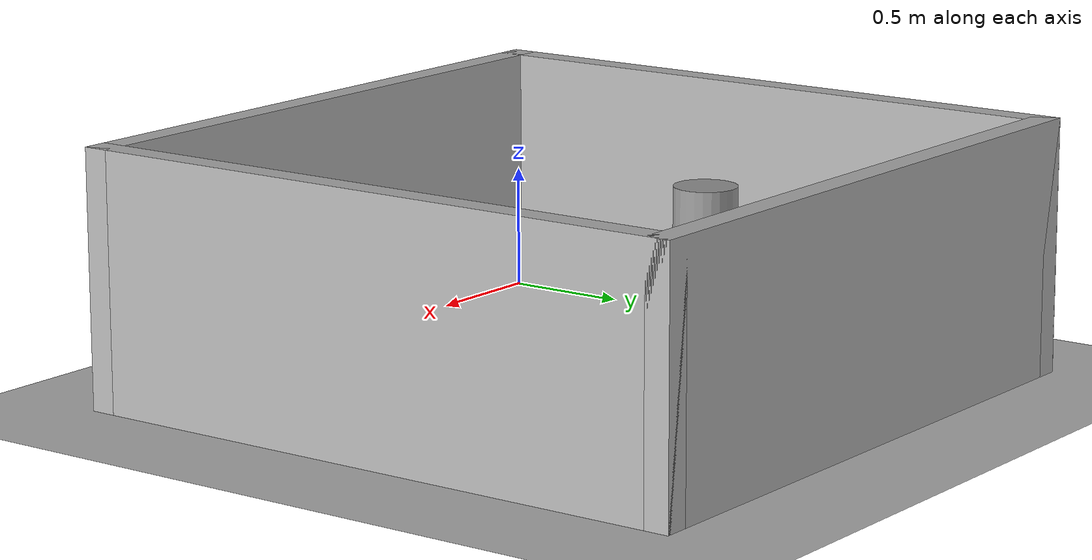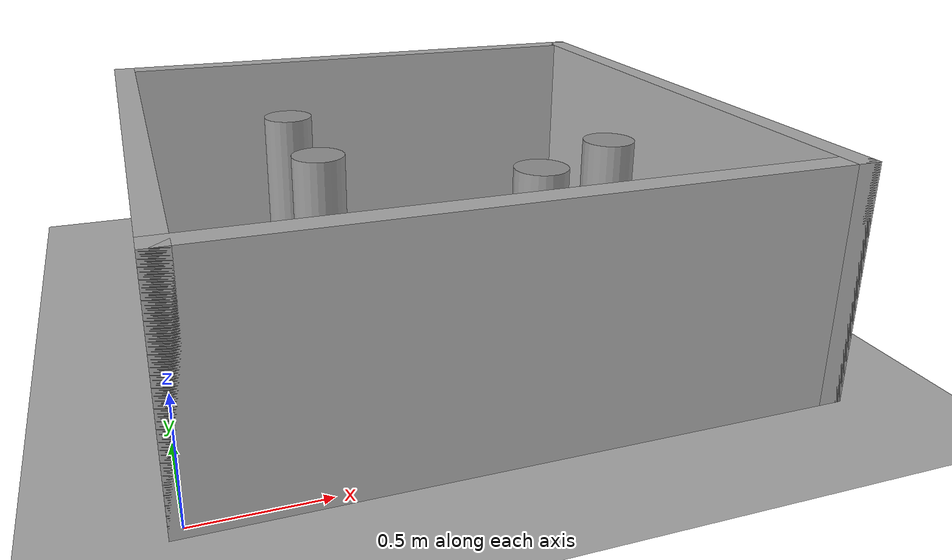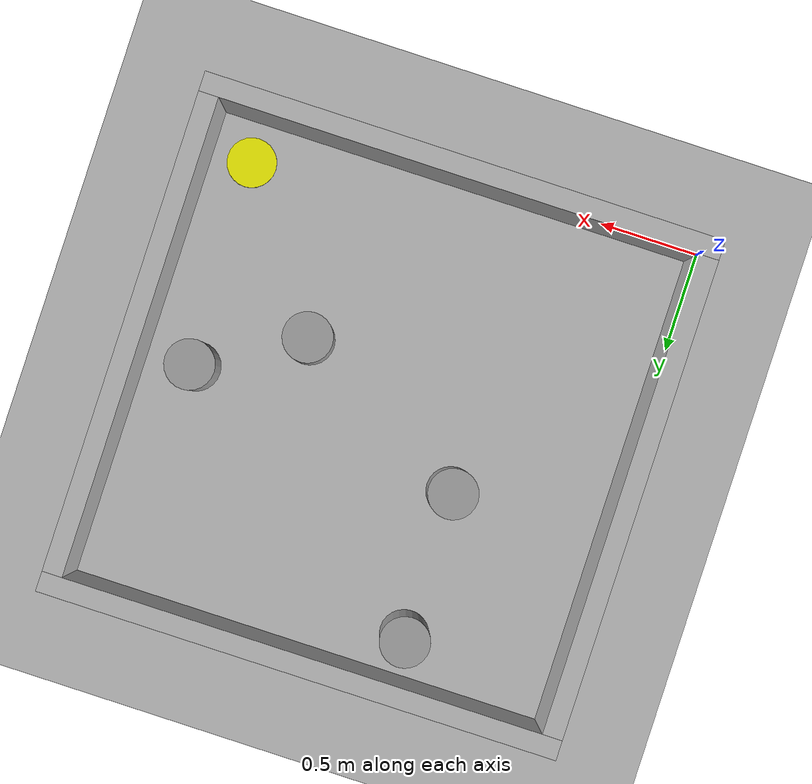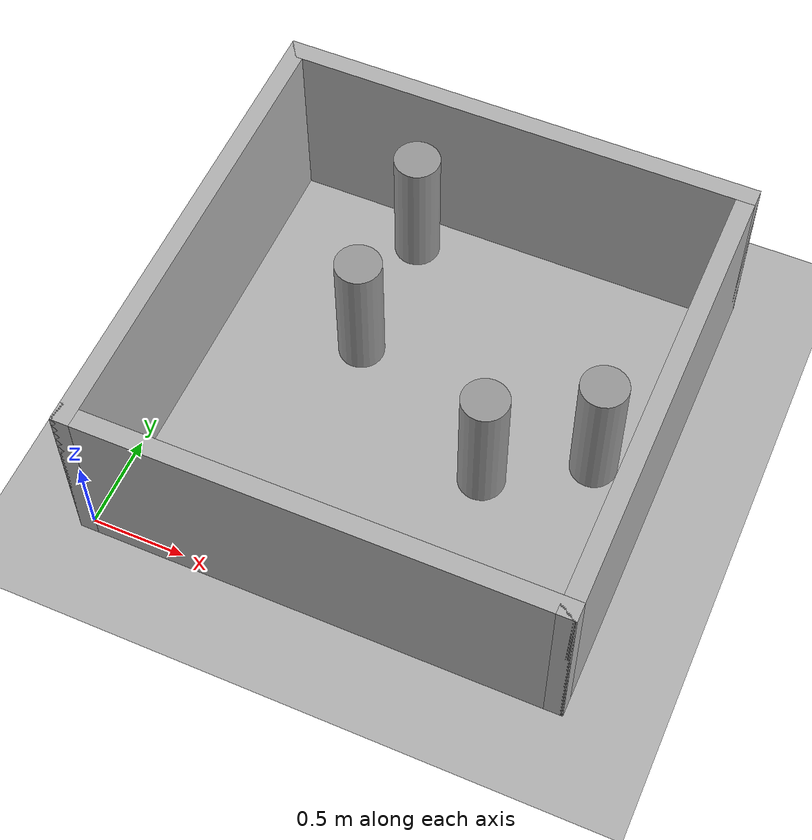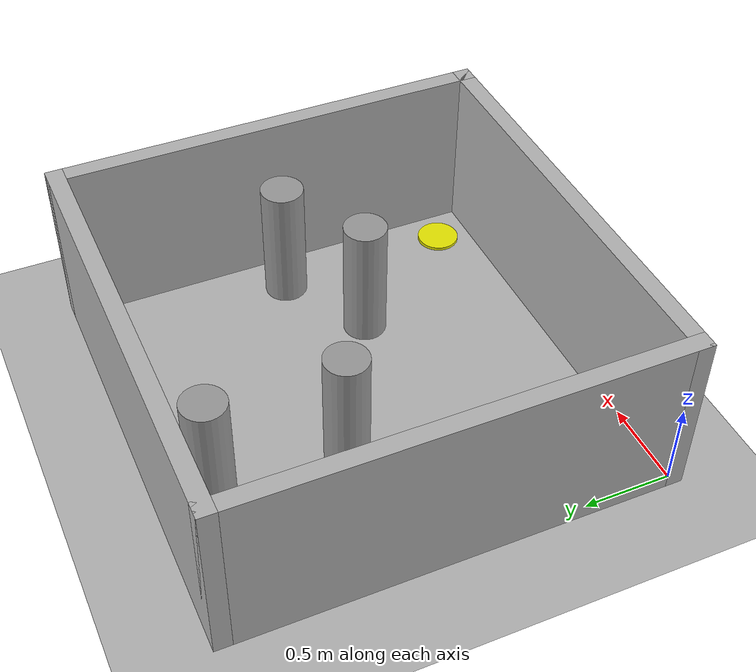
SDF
<?xml version="1.0" ?>
<sdf version="1.6">
  <world name="default">

    <light name="sun" type="directional">
      <cast_shadows>1</cast_shadows>
      <pose>0 0 10 0 0 0</pose>
      <diffuse>0.8 0.8 0.8 1</diffuse>
      <specular>0.1 0.1 0.1 1</specular>
      <direction>-0.5 0.5 -1</direction>
    </light>

    <scene>
      <ambient>0.4 0.4 0.4 1</ambient>
      <background>0.7 0.7 0.7 1</background>
      <shadows>1</shadows>
    </scene>

    <!-- GUI opens top-down on the room centre, zoomed out (z=5.5) and rotated
         90 deg (yaw=pi) so the charger sits bottom-left
         (screen up = -X, screen right = +Y) -->
    <gui fullscreen="0">
      <camera name="user_camera">
        <pose>1.25 1.25 5.5 0 1.5708 3.14159</pose>
        <view_controller>orbit</view_controller>
        <projection_type>perspective</projection_type>
      </camera>
    </gui>

    <model name="ground_plane">
      <static>1</static>
      <link name="link">
        <collision name="collision">
          <geometry><plane><normal>0 0 1</normal><size>100 100</size></plane></geometry>
        </collision>
        <visual name="visual">
          <geometry><plane><normal>0 0 1</normal><size>100 100</size></plane></geometry>
          <material><ambient>0.7 0.7 0.7 1</ambient><diffuse>0.7 0.7 0.7 1</diffuse></material>
        </visual>
      </link>
    </model>

    <!-- Room walls (thin boxes, 1.0 m high); interior corners (0,0)-(2.5,2.5) -->
    <model name="walls">
      <static>1</static>
      <link name="link">
        <collision name="c_bottom"><pose>1.25 0 0.5 0 0 0</pose><geometry><box><size>2.6 0.1 1.0</size></box></geometry></collision>
        <visual    name="v_bottom"><pose>1.25 0 0.5 0 0 0</pose><geometry><box><size>2.6 0.1 1.0</size></box></geometry><material><ambient>0.7 0.7 0.7 1</ambient><diffuse>0.7 0.7 0.7 1</diffuse></material></visual>
        <collision name="c_top"><pose>1.25 2.5 0.5 0 0 0</pose><geometry><box><size>2.6 0.1 1.0</size></box></geometry></collision>
        <visual    name="v_top"><pose>1.25 2.5 0.5 0 0 0</pose><geometry><box><size>2.6 0.1 1.0</size></box></geometry><material><ambient>0.7 0.7 0.7 1</ambient><diffuse>0.7 0.7 0.7 1</diffuse></material></visual>
        <collision name="c_left"><pose>0 1.25 0.5 0 0 0</pose><geometry><box><size>0.1 2.6 1.0</size></box></geometry></collision>
        <visual    name="v_left"><pose>0 1.25 0.5 0 0 0</pose><geometry><box><size>0.1 2.6 1.0</size></box></geometry><material><ambient>0.7 0.7 0.7 1</ambient><diffuse>0.7 0.7 0.7 1</diffuse></material></visual>
        <collision name="c_right"><pose>2.5 1.25 0.5 0 0 0</pose><geometry><box><size>0.1 2.6 1.0</size></box></geometry></collision>
        <visual    name="v_right"><pose>2.5 1.25 0.5 0 0 0</pose><geometry><box><size>0.1 2.6 1.0</size></box></geometry><material><ambient>0.7 0.7 0.7 1</ambient><diffuse>0.7 0.7 0.7 1</diffuse></material></visual>
      </link>
    </model>

    <!-- 4 pillars, radius 0.125 m, height 0.75 m, at the design coordinates (grey) -->
    <model name="pillar_T1"><static>1</static><pose>0.8 2.25 0.375 0 0 0</pose>
      <link name="link">
        <collision name="c"><geometry><cylinder><radius>0.125</radius><length>0.75</length></cylinder></geometry></collision>
        <visual name="v"><geometry><cylinder><radius>0.125</radius><length>0.75</length></cylinder></geometry>
          <material><ambient>0.35 0.35 0.35 1</ambient><diffuse>0.6 0.6 0.6 1</diffuse></material></visual>
      </link>
    </model>
    <model name="pillar_T2"><static>1</static><pose>0.8 1.5 0.375 0 0 0</pose>
      <link name="link">
        <collision name="c"><geometry><cylinder><radius>0.125</radius><length>0.75</length></cylinder></geometry></collision>
        <visual name="v"><geometry><cylinder><radius>0.125</radius><length>0.75</length></cylinder></geometry>
          <material><ambient>0.35 0.35 0.35 1</ambient><diffuse>0.6 0.6 0.6 1</diffuse></material></visual>
      </link>
    </model>
    <model name="pillar_T3"><static>1</static><pose>1.7 1.0 0.375 0 0 0</pose>
      <link name="link">
        <collision name="c"><geometry><cylinder><radius>0.125</radius><length>0.75</length></cylinder></geometry></collision>
        <visual name="v"><geometry><cylinder><radius>0.125</radius><length>0.75</length></cylinder></geometry>
          <material><ambient>0.35 0.35 0.35 1</ambient><diffuse>0.6 0.6 0.6 1</diffuse></material></visual>
      </link>
    </model>
    <model name="pillar_T4"><static>1</static><pose>2.2 1.3 0.375 0 0 0</pose>
      <link name="link">
        <collision name="c"><geometry><cylinder><radius>0.125</radius><length>0.75</length></cylinder></geometry></collision>
        <visual name="v"><geometry><cylinder><radius>0.125</radius><length>0.75</length></cylinder></geometry>
          <material><ambient>0.35 0.35 0.35 1</ambient><diffuse>0.6 0.6 0.6 1</diffuse></material></visual>
      </link>
    </model>

    <!-- Charger: flat yellow marker at (2.25,0.25), VISUAL only (no collision) -->
    <model name="charger"><static>1</static><pose>2.25 0.25 0.01 0 0 0</pose>
      <link name="link">
        <visual name="v"><geometry><cylinder><radius>0.125</radius><length>0.02</length></cylinder></geometry>
          <material><ambient>0.9 0.9 0 1</ambient><diffuse>0.9 0.9 0 1</diffuse></material></visual>
      </link>
    </model>

  </world>
</sdf>
